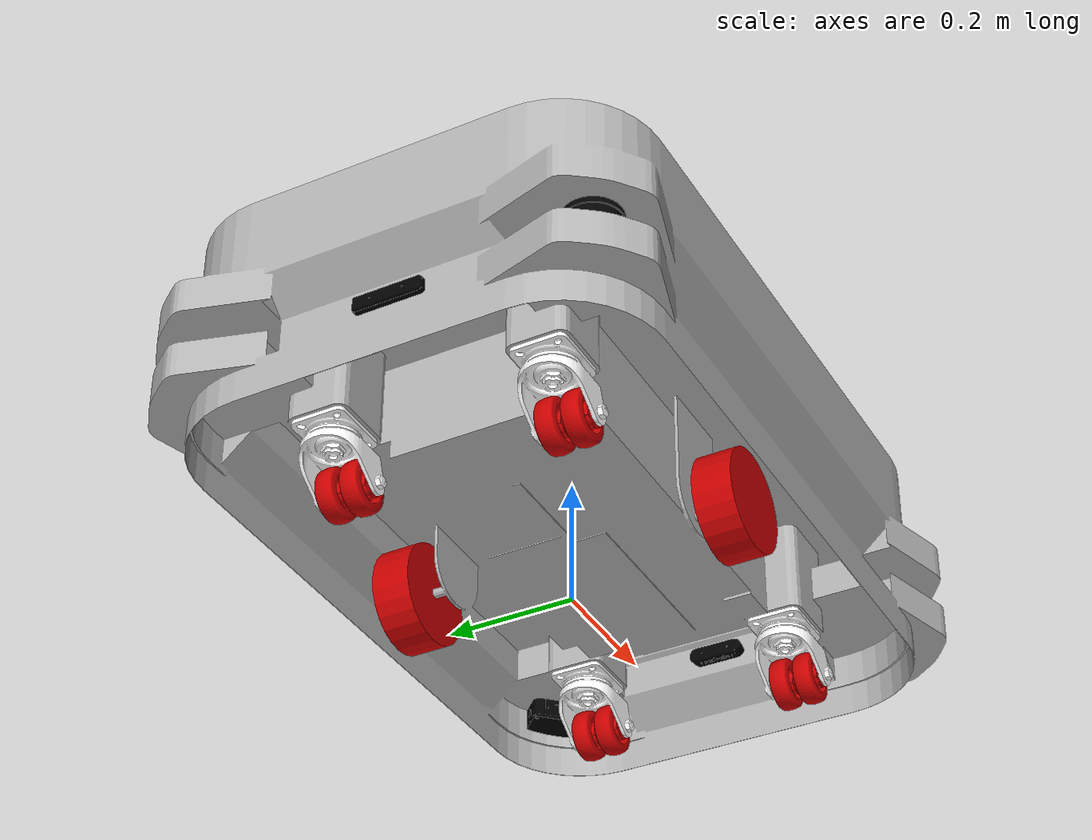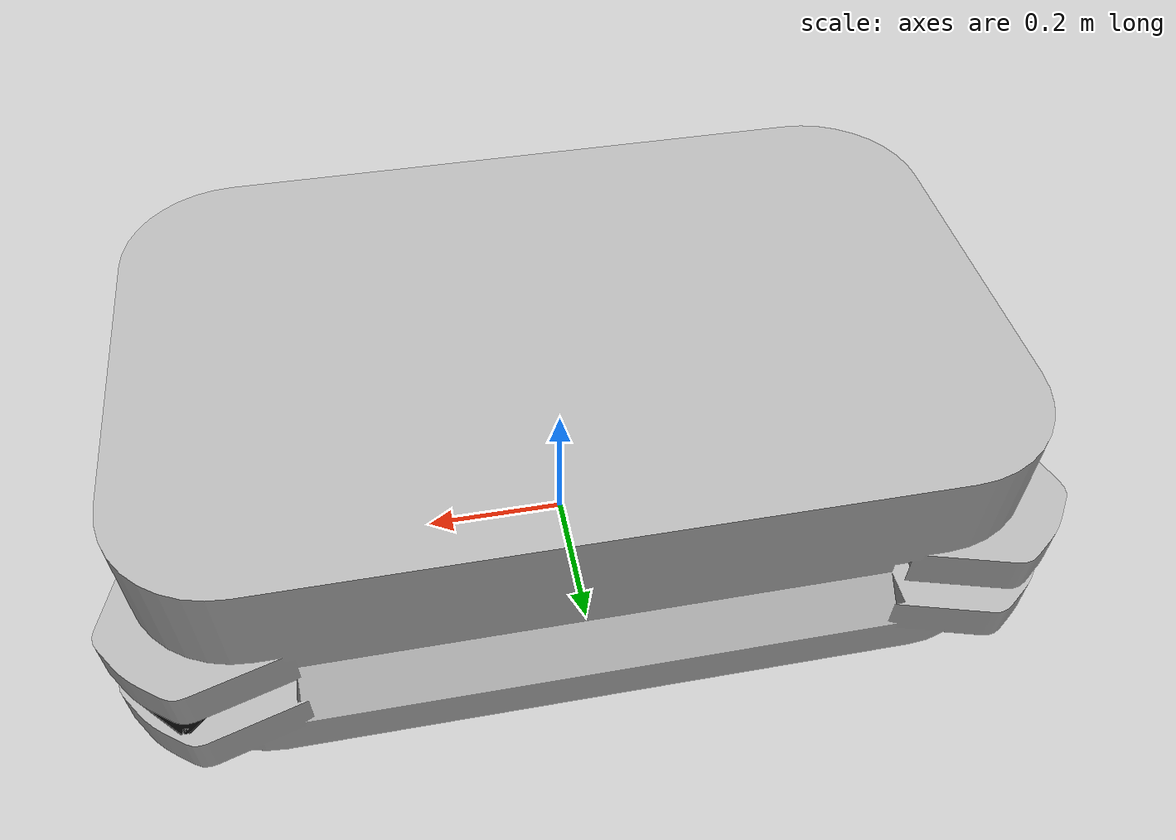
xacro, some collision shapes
<?xml version="1.0"?>
<robot xmlns:xacro="http://www.ros.org/wiki/xacro" name="diffamr">

    <xacro:arg name="use_ros2_control" default="true"/>
    <xacro:arg name="sim_mode" default="false"/>

    <xacro:if value="$(arg use_ros2_control)">
        <xacro:include filename="$(find diffamr2_description)/urdf/ros2_control.xacro" />
    </xacro:if>

    <xacro:unless value="$(arg use_ros2_control)">
      <xacro:include filename="$(find diffamr2_description)/urdf/gazebo_control.xacro" />
    </xacro:unless>

    <xacro:property name="base_width" value="0.778" />
    <xacro:property name="base_len" value="1.198" />
    <xacro:property name="base_height" value="0.345" />
    <xacro:property name="wheel_separation" value="0.470" />
    <xacro:property name="wheel_radius" value="0.08" />
    <xacro:property name="wheel_width" value="0.06" />

    <!-- Color
    Properties -->
    <material name="blue">
        <color rgba="0 0 0.8 1" />
    </material>
    <material name="black">
        <color rgba="0 0 0 1" />
    </material>
    <material name="white">
        <color rgba="1 1 1 1" />
    </material>
    <material name="orange">
        <color rgba="0.5 0.2 0.2 1" />
    </material>
    <material name="silver">
        <color rgba="0.700 0.700 0.700 1.000" />
    </material>
    <material name="red">
        <color rgba="0.8 0.0 0.0 1.0" />
    </material>

    <!-- Interial
    macros -->
    <xacro:macro name="cylinder_inertia" params="m r h">
        <inertial>
            <mass value="${m}" />
            <origin rpy="1.57 0 0" xyz="0 0 0" />
            <inertia ixx="${m*(3*r*r+h*h)/12}" ixy="0" ixz="0" iyy="${m*(3*r*r+h*h)/12}" iyz="0"
                izz="${m*r*r/2}" />
        </inertial>
    </xacro:macro>

    <xacro:macro name="box_inertia" params="m x y z">
        <inertial>
            <mass value="${m}" />
            <inertia ixx="${m / 12.0 * (y*y + z*z)}" ixy="0.0" ixz="0.0"
                iyy="${m / 12.0 * (x*x + z*z)}" iyz="0.0"
                izz="${m / 12.0 * (x*x + y*y)}" />
        </inertial>
    </xacro:macro>

    <link name="base_link">
        <inertial>
            <origin rpy="0 0 0"
                xyz="0.0003528963950015804 -0.004334043984325931 0.11719610822734623" />
            <mass value="183.81240774533836" />
            <inertia ixx="9.074876" ixy="0.003861" ixz="0.00617" iyy="22.010219" iyz="-0.080847"
                izz="26.97218" />
        </inertial>
        <visual>
            <origin rpy="0 0 0" xyz="0 0 0" />
            <geometry>
                <mesh filename="package://diffamr2_description/meshes/base_link.stl"
                    scale="0.001 0.001 0.001" />
            </geometry>
            <material name="silver" />
        </visual>
        <collision>
            <origin rpy="0 0 0" xyz="0 0 0" />
            <geometry>
                <mesh filename="package://diffamr2_description/meshes/base_link.stl"
                    scale="0.001 0.001 0.001" />
            </geometry>
        </collision>
    </link>

    <link name="base_footprint" />

    <joint name="base_footprint_joint" type="fixed">
        <origin xyz="0 0 ${wheel_radius+0.02}" rpy="0 0 0" />
        <parent link="base_footprint" />
        <child link="base_link" />
    </joint>

    <!--lidar-->
    <xacro:include filename="$(find diffamr2_description)/urdf/accessories/sicknanoscan.xacro" />
    <xacro:sicknanoscan reflect="-1" prefix="rear" reflect_yaw="3.1415926535" />
    <xacro:sicknanoscan reflect="1" prefix="front" reflect_yaw="0" />

    <!--cameras-->
    <xacro:include filename="$(find diffamr2_description)/urdf/accessories/d435i.urdf.xacro" />
    <xacro:d435i />

    <xacro:include filename="$(find diffamr2_description)/urdf/accessories/t265.urdf.xacro" />
    <xacro:t265 />

    <!--Wheel
    link & joint macro -->
    <xacro:include filename="$(find diffamr2_description)/urdf/wheel.urdf.xacro" />

    <!--Create
    left and right Wheel links/joints-->
    <xacro:wheel prefix="left" reflect="-1" />
    <xacro:wheel prefix="right" reflect="1" />

    <xacro:include
        filename="$(find diffamr2_description)/urdf/caster_wheel/caster_top_flat.urdf.xacro" />
    <xacro:include
        filename="$(find diffamr2_description)/urdf/caster_wheel/caster_wheel_holder.urdf.xacro" />
    <xacro:include
        filename="$(find diffamr2_description)/urdf/caster_wheel/caster_left_wheel.urdf.xacro" />
    <xacro:include
        filename="$(find diffamr2_description)/urdf/caster_wheel/caster_right_wheel.urdf.xacro" />

    <!--Create
    4 Caster Wheel links & joints-->
    <xacro:macro name="whole_caster_wheel" params="prefix reflect reflect_x">
        <xacro:caster_top_flat prefix="${prefix}" reflect="${reflect}" reflect_x="${reflect_x}" />
        <xacro:caster_wheel_holder prefix="${prefix}" reflect="${reflect}" reflect_x="${reflect_x}" />
        <xacro:caster_left_wheel prefix="${prefix}" reflect="${reflect}" reflect_x="${reflect_x}" />
        <xacro:caster_right_wheel prefix="${prefix}" reflect="${reflect}" reflect_x="${reflect_x}" />
    </xacro:macro>

    <xacro:whole_caster_wheel prefix="back_left" reflect="-1" reflect_x="1" />
    <xacro:whole_caster_wheel prefix="back_right" reflect="1" reflect_x="1" />
    <xacro:whole_caster_wheel prefix="front_left" reflect="-1" reflect_x="-1" />
    <xacro:whole_caster_wheel prefix="front_right" reflect="1" reflect_x="-1" />

</robot>

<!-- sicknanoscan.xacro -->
<robot xmlns:xacro="http://www.ros.org/wiki/xacro" name="sensor_laser">
    <xacro:property name="laser_joint_origin_x" value="0.514"/>
    <xacro:property name="laser_joint_origin_y" value="0.3025"/>
    <xacro:property name="laser_joint_origin_z" value="0.06993"/>

    <xacro:macro name="sicknanoscan" params="reflect prefix reflect_yaw">
        <link name="${prefix}_sicknanoscan">
            <visual>
                <origin rpy="1.57 0 0" xyz="0 0 0"/>
                <geometry>
                    <mesh filename="package://diffamr2_description/meshes/accessories/sicknanoscan.stl" scale="0.001 0.001 0.001"/>
                </geometry>
                <material name="black"/>
            </visual>
            <collision>
                <origin rpy="1.57 0 0" xyz="0 0 0"/>
                <geometry>
                    <mesh filename="package://diffamr2_description/meshes/accessories/sicknanoscan.stl" scale="0.001 0.001 0.001"/>
                </geometry>
            </collision>

            <xacro:if value="${prefix == 'front'}">
                <inertial>
                    <origin rpy="0 0 0" xyz="6.470499335109459e-06 7.27762149984601e-05 0.03356018043589451"/>
                    <mass value="0.6754806778737142"/>
                    <inertia ixx="0.000805" ixy="1e-06" ixz="-2e-06" iyy="0.000808" iyz="-1e-06" izz="0.000923"/>
                </inertial>
            </xacro:if>

            <xacro:if value="${prefix == 'rear'}">
                <inertial>
                    <origin rpy="0 0 0" xyz="-6.470499335220481e-06 -7.277621536710965e-05 0.033560180435894524"/>
                    <mass value="0.6754806778737142"/>
                    <inertia ixx="0.000805" ixy="1e-06" ixz="2e-06" iyy="0.000808" iyz="1e-06" izz="0.000923"/>
                </inertial>
            </xacro:if>

        </link>

        <joint name="${prefix}_sicknanoscan_joint" type="fixed">
            <origin xyz="${laser_joint_origin_x*reflect} ${laser_joint_origin_y*reflect} ${laser_joint_origin_z}" rpy="0 0 ${reflect_yaw+0.785398}"/>
            <parent link="base_link"/>
            <child link="${prefix}_sicknanoscan"/>
        </joint>
    </xacro:macro>
</robot>

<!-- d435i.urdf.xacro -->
<robot xmlns:xacro="http://www.ros.org/wiki/xacro" name="sensor_camera">
    <xacro:property name="camera_origin_x" value="0.5145"/>
    <xacro:property name="camera_origin_y" value="0"/>
    <xacro:property name="camera_origin_z" value="0.08376"/>

    <xacro:macro name="d435i">
        <link name="d435i_link">
            <visual>
                <origin xyz="0 0 0" rpy="1.57 0 1.57"/>
                <geometry>
                    <mesh filename="package://diffamr2_description/meshes/accessories/D435i.stl" scale="0.001 0.001 0.001"/>
                </geometry>
                <material name="black"/>
            </visual>
            <collision>
                <origin  xyz="0 0 0" rpy="1.57 0 1.57"/>
                <geometry>
                   <mesh filename="package://diffamr2_description/meshes/accessories/D435i.stl" scale="0.001 0.001 0.001"/>
                </geometry>
            </collision>
            <inertial>
                <origin rpy="0 0 0" xyz="0.0125468500947854 0.0011824094783870413 6.326174103561677e-05"/>
                <mass value="0.33805934343994715"/>
                <inertia ixx="0.000211" ixy="-2e-06" ixz="-0.0" iyy="3.1e-05" iyz="0.0" izz="0.000212"/>
            </inertial>
        </link>

        <joint name="d435i_joint" type="fixed">
            <origin xyz="${camera_origin_x} 0 ${camera_origin_z}" rpy="0 0 0"/>
            <parent link="base_link"/>
            <child link="d435i_link"/>
        </joint>

    </xacro:macro>
</robot>

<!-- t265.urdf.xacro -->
<robot xmlns:xacro="http://www.ros.org/wiki/xacro" name="sensor_camera">
    <xacro:property name="camera_origin_x" value="-0.5145"/>
    <xacro:property name="camera_origin_y" value="0"/>
    <xacro:property name="camera_origin_z" value="0.08376"/>

    <xacro:macro name="t265">
        <link name="t265">
            <visual>
                <origin xyz="0 0 0" rpy="-1.57 0 1.57"/>
                <geometry>
                    <mesh filename="package://diffamr2_description/meshes/accessories/T265.stl" scale="0.001 0.001 0.001"/>
                </geometry>
                <material name="black"/>
            </visual>
            <collision>
                <origin  xyz="0 0 0" rpy="-1.57 0 1.57"/>
                <geometry>
                   <mesh filename="package://diffamr2_description/meshes/accessories/T265.stl" scale="0.001 0.001 0.001"/>
                </geometry>
            </collision>
            <inertial>
                <origin rpy="0 0 0" xyz="6.3413686398616775e-06 0.009746205656542904 -4.43297516607849e-05"/>
                <mass value="0.07913009022887288"/>
                <inertia ixx="8.3e-05" ixy="0.0" ixz="0.0" iyy="6e-06" iyz="0.0" izz="7.9e-05"/>
            </inertial>
        </link>

        <joint name="t265_joint" type="fixed">
            <origin xyz="${camera_origin_x} 0 ${camera_origin_z}" rpy="0 0 3.14"/>
            <parent link="base_link"/>
            <child link="t265"/>
        </joint>

    </xacro:macro>

</robot>

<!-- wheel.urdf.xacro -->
<robot xmlns:xacro="http://www.ros.org/wiki/xacro" name="wheel">
<xacro:property name="PI" value="3.1415926535897931"/>

    <xacro:macro name="wheel" params="prefix reflect">
        <link name="${prefix}_wheel">
            <visual>
                <origin rpy="0 0 0" xyz="0 0 0"/>
                <geometry>
                    <mesh filename="package://diffamr2_description/meshes/wheel.stl" scale="0.001 0.001 0.001"/>
                </geometry>
                <material name="red"/>
            </visual>

            <xacro:if value="${prefix == 'left'}">
                <inertial>
                    <origin rpy="0 0 0" xyz="2.214041822411276e-14 0.02413559463226142 -1.9935550606142716e-14"/>
                    <mass value="3"/>
                    <inertia ixx="0.006005" ixy="0.00" ixz="-0.0" iyy="0.009151" iyz="-0.0" izz="0.006005"/>
                </inertial>

                <collision>
                    <origin rpy="${PI/2} 0 0" xyz="2.214041822411276e-14 0.02413559463226142 -1.9935550606142716e-14"/>
                    <geometry>
                        <cylinder radius="0.08" length="0.06"/>
                    </geometry>
                </collision>
            </xacro:if>

            <xacro:if value="${prefix == 'right'}">
                <inertial>
                    <origin rpy="0 0 0" xyz="2.214041822411276e-14 -0.024135594632261392 -1.9935550606142716e-14"/>
                    <mass value="3"/>
                    <inertia ixx="0.006005" ixy="0.0" ixz="-0.0" iyy="0.009151" iyz="-0.0" izz="0.006005"/>
                </inertial>

                <collision>
                    <origin rpy="${PI/2} 0 0" xyz="2.214041822411276e-14 -0.024135594632261392 -1.9935550606142716e-14"/>
                    <geometry>
                        <cylinder radius="0.08" length="0.06"/>
                    </geometry>
                </collision>
            </xacro:if>
        </link>

        <joint name="${prefix}_wheel_joint" type="continuous">
            <axis xyz="0 1 0" rpy="0 0 0"/>
            <parent link="base_link"/>
            <child link="${prefix}_wheel"/>
            <origin xyz="0 ${reflect*-wheel_separation/2} -0.02" rpy="0 0 0"/>
        </joint>

        <transmission name="${prefix}_wheel_trans" type="SimpleTransmission">
            <type>transmission_interface/SimpleTransmission</type>
            <actuator name="${prefix}_wheel_motor">
                <mechanicalReduction>1</mechanicalReduction>
            </actuator>
            <joint name="${prefix}_wheel">
                <hardwareInterface>hardware_interface/VelocityJointInterface</hardwareInterface>
            </joint>
        </transmission>
    </xacro:macro>

</robot>

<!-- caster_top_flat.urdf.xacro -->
<robot xmlns:xacro="http://www.ros.org/wiki/xacro" name="caster_top_flat">
    <xacro:macro name="caster_top_flat" params="prefix reflect reflect_x">
        <link name="${prefix}_top_flat">
            <visual>
                <origin xyz="0 0 0" rpy="0 0 1.57"/>
                <geometry>
                    <mesh filename="package://diffamr2_description/meshes/caster_wheel/caster_wheel_top.stl" scale="0.001 0.001 0.001"/>
                </geometry>
                <material name="white"/>
            </visual>
            <collision>
                <origin xyz="0 0 0" rpy="0 0 1.57"/>
                <geometry>
                    <mesh filename="package://diffamr2_description/meshes/caster_wheel/caster_wheel_top.stl" scale="0.001 0.001 0.001"/>
                </geometry>
            </collision>
            <inertial>
                <origin rpy="0 0 0" xyz="-2.170775276200132e-08 -6.448720446528e-10 -0.006384438817943215"/>
                <mass value="0.5844435507164926"/>
                <inertia ixx="0.0003" ixy="0.0" ixz="-0.0" iyy="0.000379" iyz="0.0" izz="0.00066"/>
            </inertial>
        </link>
        <joint name="${prefix}_top_flat_joint" type="fixed">
            <parent link="base_link"/>
            <child link="${prefix}_top_flat"/>
            <origin xyz="${reflect_x*-0.375} ${reflect*-0.17} 0.0115"
                    rpy="0 0 0"/>
        </joint>
    </xacro:macro>

</robot>

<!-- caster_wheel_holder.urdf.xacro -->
<robot xmlns:xacro="http://www.ros.org/wiki/xacro" name="caster_wheel_holder">
    <xacro:macro name="caster_wheel_holder" params="prefix reflect reflect_x">
        <link name="${prefix}_wheel_holder">
            <visual>
                <origin rpy="0 0 1.57" xyz="0 0.0 0"/>
                <geometry>
                    <mesh filename="package://diffamr2_description/meshes/caster_wheel/caster_wheel_holder.stl" scale="0.001 0.001 0.001"/>
                </geometry>
                <material name="white"/>
            </visual>
            <collision>
                <origin rpy="0 0 1.57" xyz="0 0 0"/>
                <geometry>
                    <mesh filename="package://diffamr2_description/meshes/caster_wheel/caster_wheel_holder.stl" scale="0.001 0.001 0.001"/>
                </geometry>
            </collision>
            <inertial>
                <origin rpy="0 0 0" xyz="-0.016128780082706073 0.00014179777503836588 -0.025444393443257315"/>
                <mass value="1.183936664781352"/>
                <inertia ixx="0.001551" ixy="5e-06" ixz="-0.00043" iyy="0.001434" iyz="5e-06" izz="0.001853"/>
            </inertial>
        </link>

        <joint name="${prefix}_wheel_holder_joint" type="continuous">
            <axis xyz="0 0 1.0"/>
            <parent link="${prefix}_top_flat"/>
            <child link="${prefix}_wheel_holder"/>
            <origin rpy="0 0 0" xyz="0 0 -0.014"/>
            <dynamics friction="0.0015"/>
        </joint>
    </xacro:macro>
</robot>

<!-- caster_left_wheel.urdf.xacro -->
<robot xmlns:xacro="http://www.ros.org/wiki/xacro" name="caster_left_wheel">
    <xacro:macro name="caster_left_wheel" params="prefix reflect reflect_x">
        <link name="${prefix}_caster_left_wheel">
            <visual>
                <origin rpy="0 0 1.57" xyz="0 0 0"/>
                <geometry>
                    <mesh filename="package://diffamr2_description/meshes/caster_wheel/caster_left_wheel.stl" scale="0.001 0.001 0.001"/>
                </geometry>
                <material name="red"/>
            </visual>

            <collision>
                <origin rpy="0 0 1.57" xyz="0 0 0"/>
                <geometry>
                    <mesh filename="package://diffamr2_description/meshes/caster_wheel/caster_left_wheel.stl" scale="0.001 0.001 0.001"/>
                </geometry>
            </collision>
            <inertial>
                <origin rpy="0 0 0" xyz="-1.1048826851212112e-05 2.7324836014558374e-05 1.4354974448016478e-06"/>
                <mass value="0.9318790259982154"/>
                <inertia ixx="0.000442" ixy="-0.0" ixz="0.0" iyy="0.000751" iyz="0.0" izz="0.000442"/>
            </inertial>
        </link>

        <joint name="${prefix}_caster_left_wheel_joint" type="continuous">
            <origin rpy="0 0 0" xyz="0.045 0.0025 -0.0575"/>
            <parent link="${prefix}_wheel_holder"/>
            <child link="${prefix}_caster_left_wheel"/>
            <axis xyz="0.0 1.0 0.0"/>
        </joint>
    </xacro:macro>
</robot>

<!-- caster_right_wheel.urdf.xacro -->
<robot xmlns:xacro="http://www.ros.org/wiki/xacro" name="caster_right_wheel">
    <xacro:macro name="caster_right_wheel" params="prefix reflect reflect_x">
        <link name="${prefix}_caster_right_wheel">
            <visual>
                <origin rpy="0 0 1.57" xyz="0 0 0"/>
                <geometry>
                    <mesh filename="package://diffamr2_description/meshes/caster_wheel/caster_right_wheel.stl" scale="0.001 0.001 0.001"/>
                </geometry>
                <material name="red"/>
            </visual>
            <collision>
                <origin rpy="0 0 1.57" xyz="0 0 0"/>
                <geometry>
                    <mesh filename="package://diffamr2_description/meshes/caster_wheel/caster_right_wheel.stl" scale="0.001 0.001 0.001"/>
                </geometry>
            </collision>
            <inertial>
                <origin rpy="0 0 0" xyz="-1.1048826851212112e-05 2.7324834310282764e-05 1.4354974448016478e-06"/>
                <mass value="0.9318790259982156"/>
                <inertia ixx="0.000442" ixy="-0.0" ixz="0.0" iyy="0.000751" iyz="0.0" izz="0.000442"/>
            </inertial>
        </link>

        <joint name="${prefix}_caster_right_wheel_joint" type="continuous">
            <origin rpy="0 0 0" xyz="0.045 -0.0025 -0.0575"/>
            <parent link="${prefix}_wheel_holder"/>
            <child link="${prefix}_caster_right_wheel"/>
            <axis xyz="0.0 1.0 0.0"/>
        </joint>
    </xacro:macro>
</robot>
